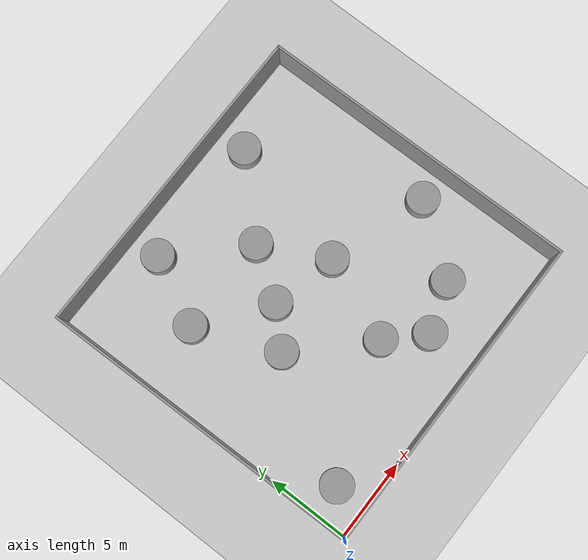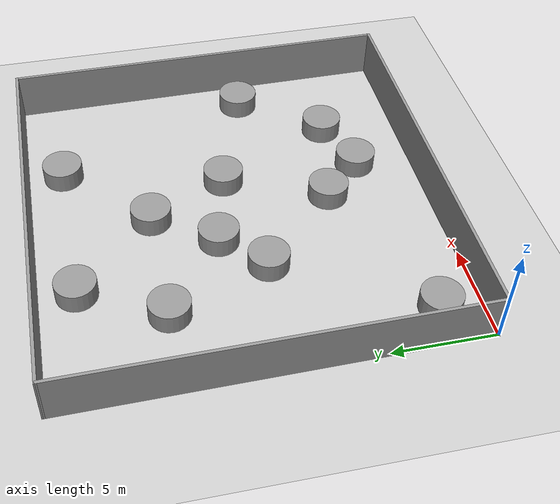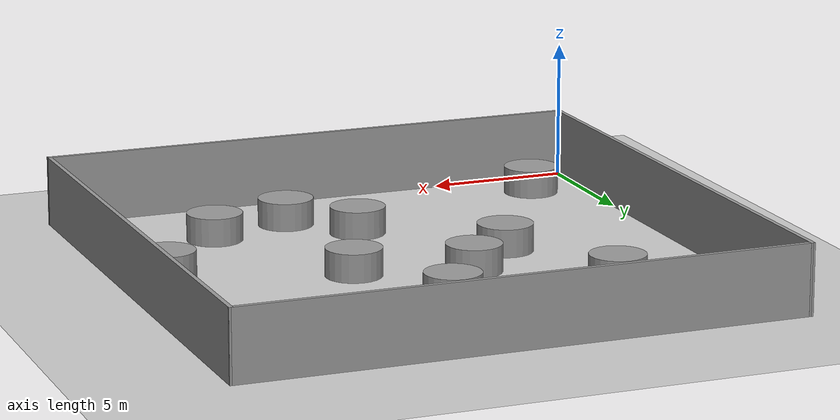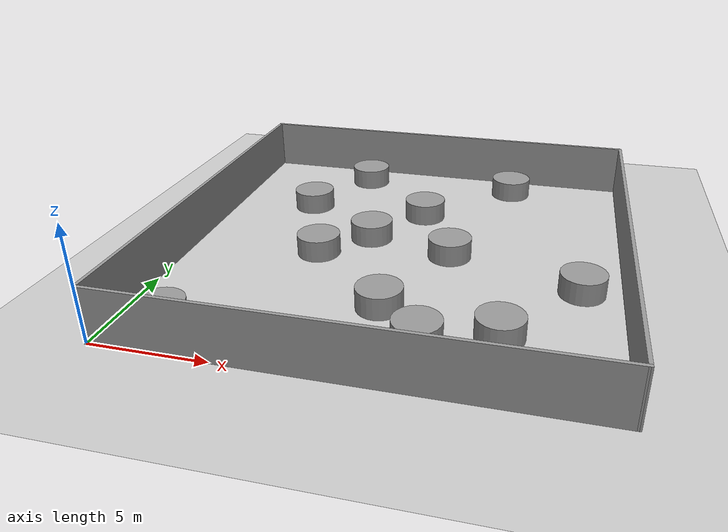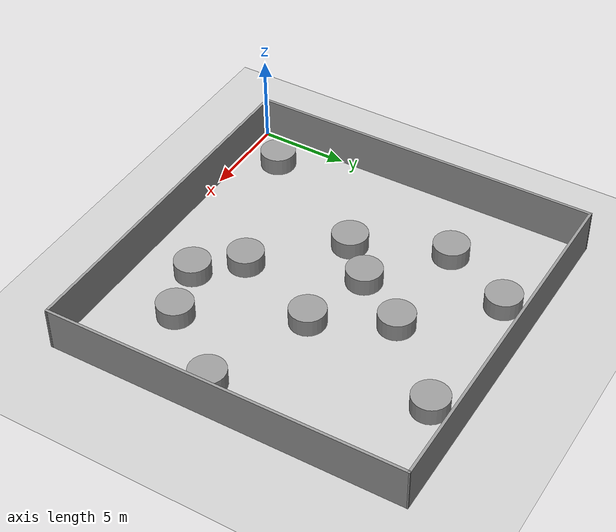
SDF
<sdf version="1.7">
 <world name="default">
  <light name="sun" type="directional">
   <pose>0 0 10 0 -0 0</pose>
   <diffuse>0.8 0.8 0.8 1</diffuse>
   <specular>0.2 0.2 0.2 1</specular>
   <attenuation>
    <range>1000</range>
    <constant>0.9</constant>
    <linear>0.01</linear>
    <quadratic>0.001</quadratic>
   </attenuation>
   <direction>-0.5 0.1 -0.9</direction>
   <spot><inner_angle>0</inner_angle><outer_angle>0</outer_angle><falloff>0</falloff></spot>
  </light>
  <model name="ground_plane">
   <static>1</static>
   <link name="link">
    <collision name="collision">
     <geometry><plane><normal>0 0 1</normal><size>100 100</size></plane></geometry>
     <surface>
      <contact><collide_bitmask>65535</collide_bitmask></contact>
      <friction><ode><mu>100</mu><mu2>50</mu2></ode></friction>
     </surface>
    </collision>
    <visual name="visual">
     <cast_shadows>0</cast_shadows>
     <geometry><plane><normal>0 0 1</normal><size>100 100</size></plane></geometry>
     <material>
      <script><uri>file://media/materials/scripts/gazebo.material</uri><name>Gazebo/Grey</name></script>
     </material>
    </visual>
   </link>
  </model>
  <gravity>0 0 -9.8</gravity>
  <magnetic_field>6e-06 2.3e-05 -4.2e-05</magnetic_field>
  <atmosphere type="adiabatic"/>
  <physics type="ode">
   <max_step_size>0.001</max_step_size>
   <real_time_factor>1</real_time_factor>
   <real_time_update_rate>1000</real_time_update_rate>
  </physics>
  <scene><ambient>0.4 0.4 0.4 1</ambient><background>0.7 0.7 0.7 1</background><shadows>1</shadows></scene>
  <spherical_coordinates>
   <surface_model>EARTH_WGS84</surface_model>
   <latitude_deg>0</latitude_deg>
   <longitude_deg>0</longitude_deg>
   <elevation>0</elevation>
   <heading_deg>0</heading_deg>
  </spherical_coordinates>
  <model name="unit_cylinder">
   <link name="link">
    <inertial>
     <mass>1</mass>
     <inertia><ixx>0.145833</ixx><ixy>0</ixy><ixz>0</ixz><iyy>0.145833</iyy><iyz>0</iyz><izz>0.125</izz></inertia>
    </inertial>
    <visual name="visual">
     <geometry><cylinder><radius>1</radius><length>1</length></cylinder></geometry>
     <material>
      <script><name>Gazebo/Grey</name><uri>file://media/materials/scripts/gazebo.material</uri></script>
      <shader type="pixel"><normal_map>__default__</normal_map></shader>
      <ambient>0.3 0.3 0.3 1</ambient>
      <diffuse>0.7 0.7 0.7 1</diffuse>
      <specular>0.01 0.01 0.01 1</specular>
      <emissive>0 0 0 1</emissive>
     </material>
    </visual>
    <collision name="collision">
     <geometry><cylinder><radius>1</radius><length>1</length></cylinder></geometry>
     <surface>
      <friction>
       <ode><mu>1</mu><mu2>1</mu2><fdir1>0 0 0</fdir1><slip1>0</slip1><slip2>0</slip2></ode>
       <torsional>
        <coefficient>1</coefficient>
        <patch_radius>0</patch_radius>
        <surface_radius>0</surface_radius>
        <use_patch_radius>1</use_patch_radius>
        <ode><slip>0</slip></ode>
       </torsional>
      </friction>
      <bounce><restitution_coefficient>0</restitution_coefficient><threshold>1e+06</threshold></bounce>
      <contact>
       <collide_without_contact>0</collide_without_contact>
       <collide_without_contact_bitmask>1</collide_without_contact_bitmask>
       <collide_bitmask>1</collide_bitmask>
       <ode>
        <soft_cfm>0</soft_cfm>
        <soft_erp>0.2</soft_erp>
        <kp>1e+13</kp>
        <kd>1</kd>
        <max_vel>0.01</max_vel>
        <min_depth>0</min_depth>
       </ode>
       <bullet>
        <split_impulse>1</split_impulse>
        <split_impulse_penetration_threshold>-0.01</split_impulse_penetration_threshold>
        <soft_cfm>0</soft_cfm>
        <soft_erp>0.2</soft_erp>
        <kp>1e+13</kp>
        <kd>1</kd>
       </bullet>
      </contact>
     </surface>
    </collision>
   </link>
   <static>0</static>
   <pose>2 2 0.5 0 -0 0</pose>
  </model>
  <model name="unit_cylinder_clone">
   <link name="link">
    <inertial>
     <mass>1</mass>
     <inertia><ixx>0.145833</ixx><ixy>0</ixy><ixz>0</ixz><iyy>0.145833</iyy><iyz>0</iyz><izz>0.125</izz></inertia>
    </inertial>
    <visual name="visual">
     <geometry><cylinder><radius>1</radius><length>1</length></cylinder></geometry>
     <material>
      <script><name>Gazebo/Grey</name><uri>file://media/materials/scripts/gazebo.material</uri></script>
      <shader type="pixel"><normal_map>__default__</normal_map></shader>
      <ambient>0.3 0.3 0.3 1</ambient>
      <diffuse>0.7 0.7 0.7 1</diffuse>
      <specular>0.01 0.01 0.01 1</specular>
      <emissive>0 0 0 1</emissive>
     </material>
    </visual>
    <collision name="collision">
     <geometry><cylinder><radius>1</radius><length>1</length></cylinder></geometry>
     <surface>
      <friction>
       <ode><mu>1</mu><mu2>1</mu2><fdir1>0 0 0</fdir1><slip1>0</slip1><slip2>0</slip2></ode>
       <torsional>
        <coefficient>1</coefficient>
        <patch_radius>0</patch_radius>
        <surface_radius>0</surface_radius>
        <use_patch_radius>1</use_patch_radius>
        <ode><slip>0</slip></ode>
       </torsional>
      </friction>
      <bounce><restitution_coefficient>0</restitution_coefficient><threshold>1e+06</threshold></bounce>
      <contact>
       <collide_without_contact>0</collide_without_contact>
       <collide_without_contact_bitmask>1</collide_without_contact_bitmask>
       <collide_bitmask>1</collide_bitmask>
       <ode>
        <soft_cfm>0</soft_cfm>
        <soft_erp>0.2</soft_erp>
        <kp>1e+13</kp>
        <kd>1</kd>
        <max_vel>0.01</max_vel>
        <min_depth>0</min_depth>
       </ode>
       <bullet>
        <split_impulse>1</split_impulse>
        <split_impulse_penetration_threshold>-0.01</split_impulse_penetration_threshold>
        <soft_cfm>0</soft_cfm>
        <soft_erp>0.2</soft_erp>
        <kp>1e+13</kp>
        <kd>1</kd>
       </bullet>
      </contact>
     </surface>
    </collision>
   </link>
   <static>0</static>
   <pose>18 8 0.5 0 -0 0</pose>
  </model>
  <model name="unit_cylinder_clone_0">
   <link name="link">
    <inertial>
     <mass>1</mass>
     <inertia><ixx>0.145833</ixx><ixy>0</ixy><ixz>0</ixz><iyy>0.145833</iyy><iyz>0</iyz><izz>0.125</izz></inertia>
    </inertial>
    <visual name="visual">
     <geometry><cylinder><radius>1</radius><length>1</length></cylinder></geometry>
     <material>
      <script><name>Gazebo/Grey</name><uri>file://media/materials/scripts/gazebo.material</uri></script>
      <shader type="pixel"><normal_map>__default__</normal_map></shader>
      <ambient>0.3 0.3 0.3 1</ambient>
      <diffuse>0.7 0.7 0.7 1</diffuse>
      <specular>0.01 0.01 0.01 1</specular>
      <emissive>0 0 0 1</emissive>
     </material>
    </visual>
    <collision name="collision">
     <geometry><cylinder><radius>1</radius><length>1</length></cylinder></geometry>
     <surface>
      <friction>
       <ode><mu>1</mu><mu2>1</mu2><fdir1>0 0 0</fdir1><slip1>0</slip1><slip2>0</slip2></ode>
       <torsional>
        <coefficient>1</coefficient>
        <patch_radius>0</patch_radius>
        <surface_radius>0</surface_radius>
        <use_patch_radius>1</use_patch_radius>
        <ode><slip>0</slip></ode>
       </torsional>
      </friction>
      <bounce><restitution_coefficient>0</restitution_coefficient><threshold>1e+06</threshold></bounce>
      <contact>
       <collide_without_contact>0</collide_without_contact>
       <collide_without_contact_bitmask>1</collide_without_contact_bitmask>
       <collide_bitmask>1</collide_bitmask>
       <ode>
        <soft_cfm>0</soft_cfm>
        <soft_erp>0.2</soft_erp>
        <kp>1e+13</kp>
        <kd>1</kd>
        <max_vel>0.01</max_vel>
        <min_depth>0</min_depth>
       </ode>
       <bullet>
        <split_impulse>1</split_impulse>
        <split_impulse_penetration_threshold>-0.01</split_impulse_penetration_threshold>
        <soft_cfm>0</soft_cfm>
        <soft_erp>0.2</soft_erp>
        <kp>1e+13</kp>
        <kd>1</kd>
       </bullet>
      </contact>
     </surface>
    </collision>
   </link>
   <static>0</static>
   <pose>10 5 0.5 0 -0 0</pose>
  </model>
  <model name="unit_cylinder_clone_0_clone">
   <link name="link">
    <inertial>
     <mass>1</mass>
     <inertia><ixx>0.145833</ixx><ixy>0</ixy><ixz>0</ixz><iyy>0.145833</iyy><iyz>0</iyz><izz>0.125</izz></inertia>
    </inertial>
    <visual name="visual">
     <geometry><cylinder><radius>1</radius><length>1</length></cylinder></geometry>
     <material>
      <script><name>Gazebo/Grey</name><uri>file://media/materials/scripts/gazebo.material</uri></script>
      <shader type="pixel"><normal_map>__default__</normal_map></shader>
      <ambient>0.3 0.3 0.3 1</ambient>
      <diffuse>0.7 0.7 0.7 1</diffuse>
      <specular>0.01 0.01 0.01 1</specular>
      <emissive>0 0 0 1</emissive>
     </material>
    </visual>
    <collision name="collision">
     <geometry><cylinder><radius>1</radius><length>1</length></cylinder></geometry>
     <surface>
      <friction>
       <ode><mu>1</mu><mu2>1</mu2><fdir1>0 0 0</fdir1><slip1>0</slip1><slip2>0</slip2></ode>
       <torsional>
        <coefficient>1</coefficient>
        <patch_radius>0</patch_radius>
        <surface_radius>0</surface_radius>
        <use_patch_radius>1</use_patch_radius>
        <ode><slip>0</slip></ode>
       </torsional>
      </friction>
      <bounce><restitution_coefficient>0</restitution_coefficient><threshold>1e+06</threshold></bounce>
      <contact>
       <collide_without_contact>0</collide_without_contact>
       <collide_without_contact_bitmask>1</collide_without_contact_bitmask>
       <collide_bitmask>1</collide_bitmask>
       <ode>
        <soft_cfm>0</soft_cfm>
        <soft_erp>0.2</soft_erp>
        <kp>1e+13</kp>
        <kd>1</kd>
        <max_vel>0.01</max_vel>
        <min_depth>0</min_depth>
       </ode>
       <bullet>
        <split_impulse>1</split_impulse>
        <split_impulse_penetration_threshold>-0.01</split_impulse_penetration_threshold>
        <soft_cfm>0</soft_cfm>
        <soft_erp>0.2</soft_erp>
        <kp>1e+13</kp>
        <kd>1</kd>
       </bullet>
      </contact>
     </surface>
    </collision>
   </link>
   <static>0</static>
   <pose>6 9 0.5 0 -0 0</pose>
  </model>
  <model name="unit_cylinder_clone_0_clone_clone">
   <link name="link">
    <inertial>
     <mass>1</mass>
     <inertia><ixx>0.145833</ixx><ixy>0</ixy><ixz>0</ixz><iyy>0.145833</iyy><iyz>0</iyz><izz>0.125</izz></inertia>
    </inertial>
    <visual name="visual">
     <geometry><cylinder><radius>1</radius><length>1</length></cylinder></geometry>
     <material>
      <script><name>Gazebo/Grey</name><uri>file://media/materials/scripts/gazebo.material</uri></script>
      <shader type="pixel"><normal_map>__default__</normal_map></shader>
      <ambient>0.3 0.3 0.3 1</ambient>
      <diffuse>0.7 0.7 0.7 1</diffuse>
      <specular>0.01 0.01 0.01 1</specular>
      <emissive>0 0 0 1</emissive>
     </material>
    </visual>
    <collision name="collision">
     <geometry><cylinder><radius>1</radius><length>1</length></cylinder></geometry>
     <surface>
      <friction>
       <ode><mu>1</mu><mu2>1</mu2><fdir1>0 0 0</fdir1><slip1>0</slip1><slip2>0</slip2></ode>
       <torsional>
        <coefficient>1</coefficient>
        <patch_radius>0</patch_radius>
        <surface_radius>0</surface_radius>
        <use_patch_radius>1</use_patch_radius>
        <ode><slip>0</slip></ode>
       </torsional>
      </friction>
      <bounce><restitution_coefficient>0</restitution_coefficient><threshold>1e+06</threshold></bounce>
      <contact>
       <collide_without_contact>0</collide_without_contact>
       <collide_without_contact_bitmask>1</collide_without_contact_bitmask>
       <collide_bitmask>1</collide_bitmask>
       <ode>
        <soft_cfm>0</soft_cfm>
        <soft_erp>0.2</soft_erp>
        <kp>1e+13</kp>
        <kd>1</kd>
        <max_vel>0.01</max_vel>
        <min_depth>0</min_depth>
       </ode>
       <bullet>
        <split_impulse>1</split_impulse>
        <split_impulse_penetration_threshold>-0.01</split_impulse_penetration_threshold>
        <soft_cfm>0</soft_cfm>
        <soft_erp>0.2</soft_erp>
        <kp>1e+13</kp>
        <kd>1</kd>
       </bullet>
      </contact>
     </surface>
    </collision>
   </link>
   <static>0</static>
   <pose>12 3 0.5 0 -0 0</pose>
  </model>
  <model name="unit_cylinder_clone_0_clone_clone_clone">
   <link name="link">
    <inertial>
     <mass>1</mass>
     <inertia><ixx>0.145833</ixx><ixy>0</ixy><ixz>0</ixz><iyy>0.145833</iyy><iyz>0</iyz><izz>0.125</izz></inertia>
    </inertial>
    <visual name="visual">
     <geometry><cylinder><radius>1</radius><length>1</length></cylinder></geometry>
     <material>
      <script><name>Gazebo/Grey</name><uri>file://media/materials/scripts/gazebo.material</uri></script>
      <shader type="pixel"><normal_map>__default__</normal_map></shader>
      <ambient>0.3 0.3 0.3 1</ambient>
      <diffuse>0.7 0.7 0.7 1</diffuse>
      <specular>0.01 0.01 0.01 1</specular>
      <emissive>0 0 0 1</emissive>
     </material>
    </visual>
    <collision name="collision">
     <geometry><cylinder><radius>1</radius><length>1</length></cylinder></geometry>
     <surface>
      <friction>
       <ode><mu>1</mu><mu2>1</mu2><fdir1>0 0 0</fdir1><slip1>0</slip1><slip2>0</slip2></ode>
       <torsional>
        <coefficient>1</coefficient>
        <patch_radius>0</patch_radius>
        <surface_radius>0</surface_radius>
        <use_patch_radius>1</use_patch_radius>
        <ode><slip>0</slip></ode>
       </torsional>
      </friction>
      <bounce><restitution_coefficient>0</restitution_coefficient><threshold>1e+06</threshold></bounce>
      <contact>
       <collide_without_contact>0</collide_without_contact>
       <collide_without_contact_bitmask>1</collide_without_contact_bitmask>
       <collide_bitmask>1</collide_bitmask>
       <ode>
        <soft_cfm>0</soft_cfm>
        <soft_erp>0.2</soft_erp>
        <kp>1e+13</kp>
        <kd>1</kd>
        <max_vel>0.01</max_vel>
        <min_depth>0</min_depth>
       </ode>
       <bullet>
        <split_impulse>1</split_impulse>
        <split_impulse_penetration_threshold>-0.01</split_impulse_penetration_threshold>
        <soft_cfm>0</soft_cfm>
        <soft_erp>0.2</soft_erp>
        <kp>1e+13</kp>
        <kd>1</kd>
       </bullet>
      </contact>
     </surface>
    </collision>
   </link>
   <static>0</static>
   <pose>15 4 0.5 0 -0 0</pose>
  </model>
  <model name="unit_cylinder_clone_0_clone_clone_clone_clone">
   <link name="link">
    <inertial>
     <mass>1</mass>
     <inertia><ixx>0.145833</ixx><ixy>0</ixy><ixz>0</ixz><iyy>0.145833</iyy><iyz>0</iyz><izz>0.125</izz></inertia>
    </inertial>
    <visual name="visual">
     <geometry><cylinder><radius>1</radius><length>1</length></cylinder></geometry>
     <material>
      <script><name>Gazebo/Grey</name><uri>file://media/materials/scripts/gazebo.material</uri></script>
      <shader type="pixel"><normal_map>__default__</normal_map></shader>
      <ambient>0.3 0.3 0.3 1</ambient>
      <diffuse>0.7 0.7 0.7 1</diffuse>
      <specular>0.01 0.01 0.01 1</specular>
      <emissive>0 0 0 1</emissive>
     </material>
    </visual>
    <collision name="collision">
     <geometry><cylinder><radius>1</radius><length>1</length></cylinder></geometry>
     <surface>
      <friction>
       <ode><mu>1</mu><mu2>1</mu2><fdir1>0 0 0</fdir1><slip1>0</slip1><slip2>0</slip2></ode>
       <torsional>
        <coefficient>1</coefficient>
        <patch_radius>0</patch_radius>
        <surface_radius>0</surface_radius>
        <use_patch_radius>1</use_patch_radius>
        <ode><slip>0</slip></ode>
       </torsional>
      </friction>
      <bounce><restitution_coefficient>0</restitution_coefficient><threshold>1e+06</threshold></bounce>
      <contact>
       <collide_without_contact>0</collide_without_contact>
       <collide_without_contact_bitmask>1</collide_without_contact_bitmask>
       <collide_bitmask>1</collide_bitmask>
       <ode>
        <soft_cfm>0</soft_cfm>
        <soft_erp>0.2</soft_erp>
        <kp>1e+13</kp>
        <kd>1</kd>
        <max_vel>0.01</max_vel>
        <min_depth>0</min_depth>
       </ode>
       <bullet>
        <split_impulse>1</split_impulse>
        <split_impulse_penetration_threshold>-0.01</split_impulse_penetration_threshold>
        <soft_cfm>0</soft_cfm>
        <soft_erp>0.2</soft_erp>
        <kp>1e+13</kp>
        <kd>1</kd>
       </bullet>
      </contact>
     </surface>
    </collision>
   </link>
   <static>0</static>
   <pose>10 14 0.5 0 -0 0</pose>
  </model>
  <model name="unit_cylinder_clone_0_clone_clone_0">
   <link name="link">
    <inertial>
     <mass>1</mass>
     <inertia><ixx>0.145833</ixx><ixy>0</ixy><ixz>0</ixz><iyy>0.145833</iyy><iyz>0</iyz><izz>0.125</izz></inertia>
    </inertial>
    <visual name="visual">
     <geometry><cylinder><radius>1</radius><length>1</length></cylinder></geometry>
     <material>
      <script><name>Gazebo/Grey</name><uri>file://media/materials/scripts/gazebo.material</uri></script>
      <shader type="pixel"><normal_map>__default__</normal_map></shader>
      <ambient>0.3 0.3 0.3 1</ambient>
      <diffuse>0.7 0.7 0.7 1</diffuse>
      <specular>0.01 0.01 0.01 1</specular>
      <emissive>0 0 0 1</emissive>
     </material>
    </visual>
    <collision name="collision">
     <geometry><cylinder><radius>1</radius><length>1</length></cylinder></geometry>
     <surface>
      <friction>
       <ode><mu>1</mu><mu2>1</mu2><fdir1>0 0 0</fdir1><slip1>0</slip1><slip2>0</slip2></ode>
       <torsional>
        <coefficient>1</coefficient>
        <patch_radius>0</patch_radius>
        <surface_radius>0</surface_radius>
        <use_patch_radius>1</use_patch_radius>
        <ode><slip>0</slip></ode>
       </torsional>
      </friction>
      <bounce><restitution_coefficient>0</restitution_coefficient><threshold>1e+06</threshold></bounce>
      <contact>
       <collide_without_contact>0</collide_without_contact>
       <collide_without_contact_bitmask>1</collide_without_contact_bitmask>
       <collide_bitmask>1</collide_bitmask>
       <ode>
        <soft_cfm>0</soft_cfm>
        <soft_erp>0.2</soft_erp>
        <kp>1e+13</kp>
        <kd>1</kd>
        <max_vel>0.01</max_vel>
        <min_depth>0</min_depth>
       </ode>
       <bullet>
        <split_impulse>1</split_impulse>
        <split_impulse_penetration_threshold>-0.01</split_impulse_penetration_threshold>
        <soft_cfm>0</soft_cfm>
        <soft_erp>0.2</soft_erp>
        <kp>1e+13</kp>
        <kd>1</kd>
       </bullet>
      </contact>
     </surface>
    </collision>
   </link>
   <static>0</static>
   <pose>14 18 0.5 0 -0 0</pose>
  </model>
  <model name="unit_cylinder_clone_0_clone_clone_0_clone">
   <link name="link">
    <inertial>
     <mass>1</mass>
     <inertia><ixx>0.145833</ixx><ixy>0</ixy><ixz>0</ixz><iyy>0.145833</iyy><iyz>0</iyz><izz>0.125</izz></inertia>
    </inertial>
    <visual name="visual">
     <geometry><cylinder><radius>1</radius><length>1</length></cylinder></geometry>
     <material>
      <script><name>Gazebo/Grey</name><uri>file://media/materials/scripts/gazebo.material</uri></script>
      <shader type="pixel"><normal_map>__default__</normal_map></shader>
      <ambient>0.3 0.3 0.3 1</ambient>
      <diffuse>0.7 0.7 0.7 1</diffuse>
      <specular>0.01 0.01 0.01 1</specular>
      <emissive>0 0 0 1</emissive>
     </material>
    </visual>
    <collision name="collision">
     <geometry><cylinder><radius>1</radius><length>1</length></cylinder></geometry>
     <surface>
      <friction>
       <ode><mu>1</mu><mu2>1</mu2><fdir1>0 0 0</fdir1><slip1>0</slip1><slip2>0</slip2></ode>
       <torsional>
        <coefficient>1</coefficient>
        <patch_radius>0</patch_radius>
        <surface_radius>0</surface_radius>
        <use_patch_radius>1</use_patch_radius>
        <ode><slip>0</slip></ode>
       </torsional>
      </friction>
      <bounce><restitution_coefficient>0</restitution_coefficient><threshold>1e+06</threshold></bounce>
      <contact>
       <collide_without_contact>0</collide_without_contact>
       <collide_without_contact_bitmask>1</collide_without_contact_bitmask>
       <collide_bitmask>1</collide_bitmask>
       <ode>
        <soft_cfm>0</soft_cfm>
        <soft_erp>0.2</soft_erp>
        <kp>1e+13</kp>
        <kd>1</kd>
        <max_vel>0.01</max_vel>
        <min_depth>0</min_depth>
       </ode>
       <bullet>
        <split_impulse>1</split_impulse>
        <split_impulse_penetration_threshold>-0.01</split_impulse_penetration_threshold>
        <soft_cfm>0</soft_cfm>
        <soft_erp>0.2</soft_erp>
        <kp>1e+13</kp>
        <kd>1</kd>
       </bullet>
      </contact>
     </surface>
    </collision>
   </link>
   <static>0</static>
   <pose>12 10 0.5 0 -0 0</pose>
  </model>
  <model name="unit_cylinder_clone_0_clone_clone_0_clone_clone">
   <link name="link">
    <inertial>
     <mass>1</mass>
     <inertia><ixx>0.145833</ixx><ixy>0</ixy><ixz>0</ixz><iyy>0.145833</iyy><iyz>0</iyz><izz>0.125</izz></inertia>
    </inertial>
    <visual name="visual">
     <geometry><cylinder><radius>1</radius><length>1</length></cylinder></geometry>
     <material>
      <script><name>Gazebo/Grey</name><uri>file://media/materials/scripts/gazebo.material</uri></script>
      <shader type="pixel"><normal_map>__default__</normal_map></shader>
      <ambient>0.3 0.3 0.3 1</ambient>
      <diffuse>0.7 0.7 0.7 1</diffuse>
      <specular>0.01 0.01 0.01 1</specular>
      <emissive>0 0 0 1</emissive>
     </material>
    </visual>
    <collision name="collision">
     <geometry><cylinder><radius>1</radius><length>1</length></cylinder></geometry>
     <surface>
      <friction>
       <ode><mu>1</mu><mu2>1</mu2><fdir1>0 0 0</fdir1><slip1>0</slip1><slip2>0</slip2></ode>
       <torsional>
        <coefficient>1</coefficient>
        <patch_radius>0</patch_radius>
        <surface_radius>0</surface_radius>
        <use_patch_radius>1</use_patch_radius>
        <ode><slip>0</slip></ode>
       </torsional>
      </friction>
      <bounce><restitution_coefficient>0</restitution_coefficient><threshold>1e+06</threshold></bounce>
      <contact>
       <collide_without_contact>0</collide_without_contact>
       <collide_without_contact_bitmask>1</collide_without_contact_bitmask>
       <collide_bitmask>1</collide_bitmask>
       <ode>
        <soft_cfm>0</soft_cfm>
        <soft_erp>0.2</soft_erp>
        <kp>1e+13</kp>
        <kd>1</kd>
        <max_vel>0.01</max_vel>
        <min_depth>0</min_depth>
       </ode>
       <bullet>
        <split_impulse>1</split_impulse>
        <split_impulse_penetration_threshold>-0.01</split_impulse_penetration_threshold>
        <soft_cfm>0</soft_cfm>
        <soft_erp>0.2</soft_erp>
        <kp>1e+13</kp>
        <kd>1</kd>
       </bullet>
      </contact>
     </surface>
    </collision>
   </link>
   <static>0</static>
   <pose>4 14 0.5 0 -0 0</pose>
  </model>
  <model name="unit_cylinder_clone_0_clone_clone_0_clone_clone_clone">
   <link name="link">
    <inertial>
     <mass>1</mass>
     <inertia><ixx>0.145833</ixx><ixy>0</ixy><ixz>0</ixz><iyy>0.145833</iyy><iyz>0</iyz><izz>0.125</izz></inertia>
    </inertial>
    <visual name="visual">
     <geometry><cylinder><radius>1</radius><length>1</length></cylinder></geometry>
     <material>
      <script><name>Gazebo/Grey</name><uri>file://media/materials/scripts/gazebo.material</uri></script>
      <shader type="pixel"><normal_map>__default__</normal_map></shader>
      <ambient>0.3 0.3 0.3 1</ambient>
      <diffuse>0.7 0.7 0.7 1</diffuse>
      <specular>0.01 0.01 0.01 1</specular>
      <emissive>0 0 0 1</emissive>
     </material>
    </visual>
    <collision name="collision">
     <geometry><cylinder><radius>1</radius><length>1</length></cylinder></geometry>
     <surface>
      <friction>
       <ode><mu>1</mu><mu2>1</mu2><fdir1>0 0 0</fdir1><slip1>0</slip1><slip2>0</slip2></ode>
       <torsional>
        <coefficient>1</coefficient>
        <patch_radius>0</patch_radius>
        <surface_radius>0</surface_radius>
        <use_patch_radius>1</use_patch_radius>
        <ode><slip>0</slip></ode>
       </torsional>
      </friction>
      <bounce><restitution_coefficient>0</restitution_coefficient><threshold>1e+06</threshold></bounce>
      <contact>
       <collide_without_contact>0</collide_without_contact>
       <collide_without_contact_bitmask>1</collide_without_contact_bitmask>
       <collide_bitmask>1</collide_bitmask>
       <ode>
        <soft_cfm>0</soft_cfm>
        <soft_erp>0.2</soft_erp>
        <kp>1e+13</kp>
        <kd>1</kd>
        <max_vel>0.01</max_vel>
        <min_depth>0</min_depth>
       </ode>
       <bullet>
        <split_impulse>1</split_impulse>
        <split_impulse_penetration_threshold>-0.01</split_impulse_penetration_threshold>
        <soft_cfm>0</soft_cfm>
        <soft_erp>0.2</soft_erp>
        <kp>1e+13</kp>
        <kd>1</kd>
       </bullet>
      </contact>
     </surface>
    </collision>
   </link>
   <static>0</static>
   <pose>6 18 0.5 0 -0 0</pose>
  </model>
  <model name="unit_cylinder_clone_0_clone_clone_0_clone_clone_clone_clone">
   <link name="link">
    <inertial>
     <mass>1</mass>
     <inertia><ixx>0.145833</ixx><ixy>0</ixy><ixz>0</ixz><iyy>0.145833</iyy><iyz>0</iyz><izz>0.125</izz></inertia>
    </inertial>
    <visual name="visual">
     <geometry><cylinder><radius>1</radius><length>1</length></cylinder></geometry>
     <material>
      <script><name>Gazebo/Grey</name><uri>file://media/materials/scripts/gazebo.material</uri></script>
      <shader type="pixel"><normal_map>__default__</normal_map></shader>
      <ambient>0.3 0.3 0.3 1</ambient>
      <diffuse>0.7 0.7 0.7 1</diffuse>
      <specular>0.01 0.01 0.01 1</specular>
      <emissive>0 0 0 1</emissive>
     </material>
    </visual>
    <collision name="collision">
     <geometry><cylinder><radius>1</radius><length>1</length></cylinder></geometry>
     <surface>
      <friction>
       <ode><mu>1</mu><mu2>1</mu2><fdir1>0 0 0</fdir1><slip1>0</slip1><slip2>0</slip2></ode>
       <torsional>
        <coefficient>1</coefficient>
        <patch_radius>0</patch_radius>
        <surface_radius>0</surface_radius>
        <use_patch_radius>1</use_patch_radius>
        <ode><slip>0</slip></ode>
       </torsional>
      </friction>
      <bounce><restitution_coefficient>0</restitution_coefficient><threshold>1e+06</threshold></bounce>
      <contact>
       <collide_without_contact>0</collide_without_contact>
       <collide_without_contact_bitmask>1</collide_without_contact_bitmask>
       <collide_bitmask>1</collide_bitmask>
       <ode>
        <soft_cfm>0</soft_cfm>
        <soft_erp>0.2</soft_erp>
        <kp>1e+13</kp>
        <kd>1</kd>
        <max_vel>0.01</max_vel>
        <min_depth>0</min_depth>
       </ode>
       <bullet>
        <split_impulse>1</split_impulse>
        <split_impulse_penetration_threshold>-0.01</split_impulse_penetration_threshold>
        <soft_cfm>0</soft_cfm>
        <soft_erp>0.2</soft_erp>
        <kp>1e+13</kp>
        <kd>1</kd>
       </bullet>
      </contact>
     </surface>
    </collision>
   </link>
   <static>0</static>
   <pose>8 11 0.5 0 -0 0</pose>
  </model>
  <model name="Untitled">
   <pose>9.82884 9.9242 0 0 -0 0</pose>
   <link name="Wall_10">
    <collision name="Wall_10_Collision">
     <geometry><box><size>20 0.15 2.5</size></box></geometry>
     <pose>0 0 1.25 0 -0 0</pose>
    </collision>
    <visual name="Wall_10_Visual">
     <pose>0 0 1.25 0 -0 0</pose>
     <geometry><box><size>20 0.15 2.5</size></box></geometry>
     <material>
      <script><uri>file://media/materials/scripts/gazebo.material</uri><name>Gazebo/Grey</name></script>
      <ambient>1 1 1 1</ambient>
     </material>
     <meta><layer>0</layer></meta>
    </visual>
    <pose>0.096152 -9.92453 0 0 -0 -0.002729</pose>
   </link>
   <link name="Wall_15">
    <collision name="Wall_15_Collision">
     <geometry><box><size>20 0.15 2.5</size></box></geometry>
     <pose>0 0 1.25 0 -0 0</pose>
    </collision>
    <visual name="Wall_15_Visual">
     <pose>0 0 1.25 0 -0 0</pose>
     <geometry><box><size>20 0.15 2.5</size></box></geometry>
     <material>
      <script><uri>file://media/materials/scripts/gazebo.material</uri><name>Gazebo/Grey</name></script>
      <ambient>1 1 1 1</ambient>
     </material>
     <meta><layer>0</layer></meta>
    </visual>
    <pose>-9.92499 0.027082 0 0 -0 1.58048</pose>
   </link>
   <link name="Wall_17">
    <collision name="Wall_17_Collision">
     <geometry><box><size>20.0009 0.15 2.5</size></box></geometry>
     <pose>0 0 1.25 0 -0 0</pose>
    </collision>
    <visual name="Wall_17_Visual">
     <pose>0 0 1.25 0 -0 0</pose>
     <geometry><box><size>20.0009 0.15 2.5</size></box></geometry>
     <material>
      <script><uri>file://media/materials/scripts/gazebo.material</uri><name>Gazebo/Grey</name></script>
      <ambient>1 1 1 1</ambient>
     </material>
     <meta><layer>0</layer></meta>
    </visual>
    <pose>9.92497 -0.026628 0 0 -0 1.58049</pose>
   </link>
   <link name="Wall_19">
    <collision name="Wall_19_Collision">
     <geometry><box><size>20 0.15 2.5</size></box></geometry>
     <pose>0 0 1.25 0 -0 0</pose>
    </collision>
    <visual name="Wall_19_Visual">
     <pose>0 0 1.25 0 -0 0</pose>
     <geometry><box><size>20 0.15 2.5</size></box></geometry>
     <material>
      <script><uri>file://media/materials/scripts/gazebo.material</uri><name>Gazebo/Grey</name></script>
      <ambient>1 1 1 1</ambient>
     </material>
     <meta><layer>0</layer></meta>
    </visual>
    <pose>-0.096177 9.92499 0 0 -0 -0.002683</pose>
   </link>
   <static>1</static>
  </model>
 </world>
</sdf>
